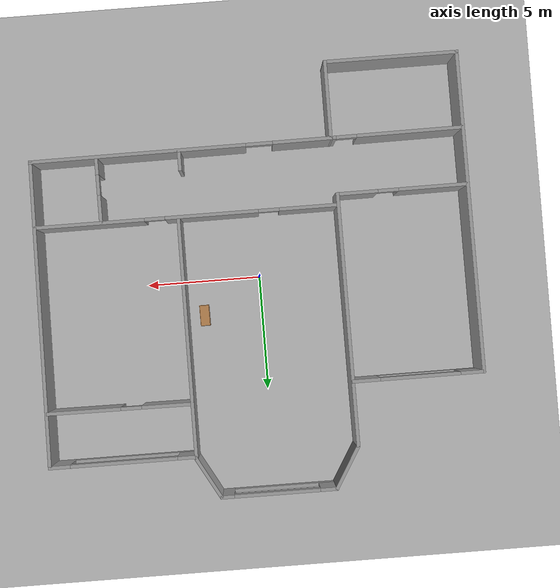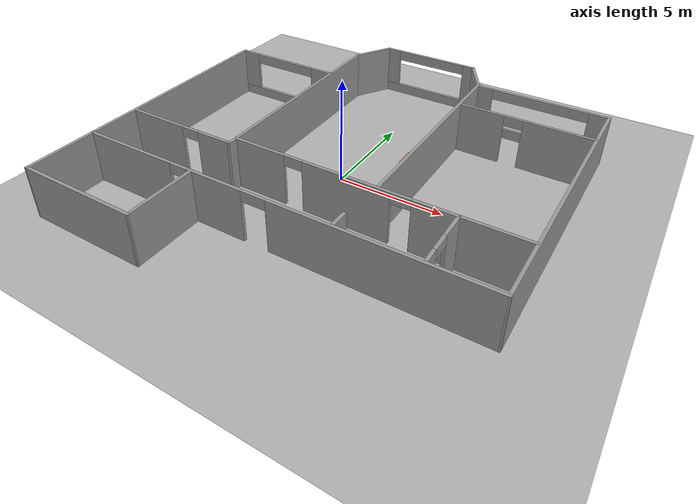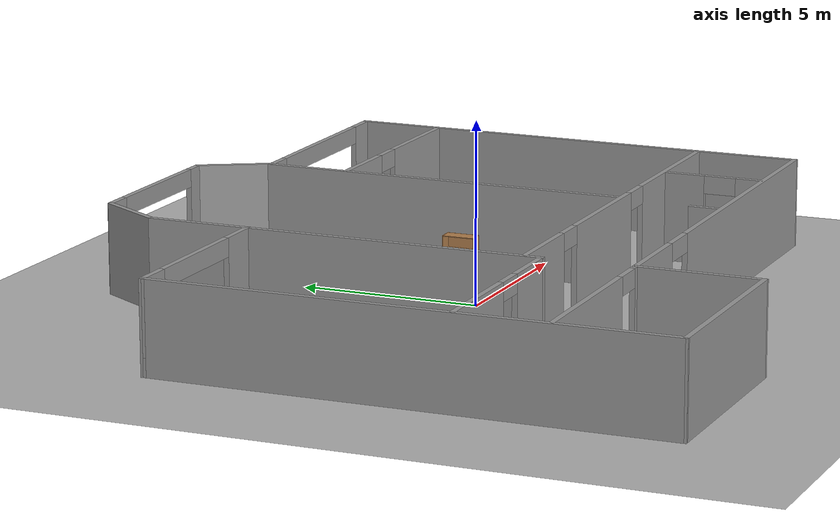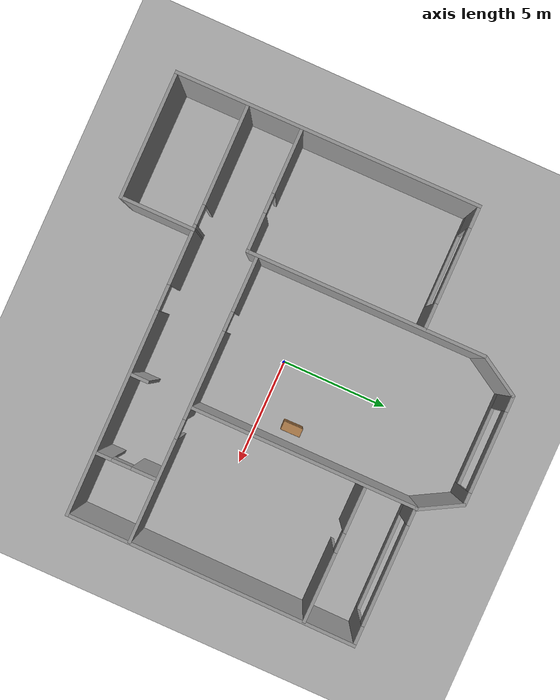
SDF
<sdf version="1.9">
 <world name="default">
  <gravity>0 0 -9.8</gravity>
  <magnetic_field>6e-06 2.3e-05 -4.2e-05</magnetic_field>
  <atmosphere type="adiabatic"/>
  <physics type="ode">
   <max_step_size>0.001</max_step_size>
   <real_time_factor>1</real_time_factor>
   <real_time_update_rate>1000</real_time_update_rate>
  </physics>
  <scene><ambient>0.4 0.4 0.4 1</ambient><background>0.7 0.7 0.7 1</background><shadows>true</shadows></scene>
  <model name="falt_model">
   <pose>0.158541 0.170544 0 0 -0 0</pose>
   <link name="Wall_0">
    <pose>-6.69195 4.70123 0 0 0 -3.14002</pose>
    <visual name="Wall_0_Visual_0">
     <pose>-2.28279 0 1.25 0 -0 0</pose>
     <geometry><box><size>1.24903 0.15 2.5</size></box></geometry>
     <material>
      <script><uri>file://media/materials/scripts/gazebo.material</uri><name>Gazebo/Grey</name></script>
      <ambient>1 1 1 1</ambient>
     </material>
     <meta><layer>0</layer></meta>
    </visual>
    <collision name="Wall_0_Collision_0">
     <geometry><box><size>1.24903 0.15 2.5</size></box></geometry>
     <pose>-2.28279 0 1.25 0 -0 0</pose>
    </collision>
    <visual name="Wall_0_Visual_1">
     <pose>0.624515 0 0.25 0 -0 0</pose>
     <geometry><box><size>4.56558 0.15 0.5</size></box></geometry>
     <material>
      <script><uri>file://media/materials/scripts/gazebo.material</uri><name>Gazebo/Grey</name></script>
      <ambient>1 1 1 1</ambient>
     </material>
     <meta><layer>0</layer></meta>
    </visual>
    <collision name="Wall_0_Collision_1">
     <geometry><box><size>4.56558 0.15 0.5</size></box></geometry>
     <pose>0.624515 0 0.25 0 -0 0</pose>
    </collision>
    <visual name="Wall_0_Visual_2">
     <pose>2.36563 0 1.5 0 -0 0</pose>
     <geometry><box><size>1.08335 0.15 2</size></box></geometry>
     <material>
      <script><uri>file://media/materials/scripts/gazebo.material</uri><name>Gazebo/Grey</name></script>
      <ambient>1 1 1 1</ambient>
     </material>
     <meta><layer>0</layer></meta>
    </visual>
    <collision name="Wall_0_Collision_2">
     <geometry><box><size>1.08335 0.15 2</size></box></geometry>
     <pose>2.36563 0 1.5 0 -0 0</pose>
    </collision>
    <visual name="Wall_0_Visual_3">
     <pose>0.082842 0 2.25 0 -0 0</pose>
     <geometry><box><size>3.48223 0.15 0.5</size></box></geometry>
     <material>
      <script><uri>file://media/materials/scripts/gazebo.material</uri><name>Gazebo/Grey</name></script>
      <ambient>1 1 1 1</ambient>
     </material>
     <meta><layer>0</layer></meta>
    </visual>
    <collision name="Wall_0_Collision_3">
     <geometry><box><size>3.48223 0.15 0.5</size></box></geometry>
     <pose>0.082842 0 2.25 0 -0 0</pose>
    </collision>
    <inertial>
     <mass>1</mass>
     <inertia><ixx>1</ixx><ixy>0</ixy><ixz>0</ixz><iyy>1</iyy><iyz>0</iyz><izz>1</izz></inertia>
    </inertial>
   </link>
   <link name="Wall_1">
    <collision name="Wall_1_Collision">
     <geometry><box><size>14.1027 0.15 2.5</size></box></geometry>
     <pose>0 0 1.25 0 -0 0</pose>
    </collision>
    <visual name="Wall_1_Visual">
     <pose>0 0 1.25 0 -0 0</pose>
     <geometry><box><size>14.1027 0.15 2.5</size></box></geometry>
     <material>
      <script><uri>file://media/materials/scripts/gazebo.material</uri><name>Gazebo/Grey</name></script>
      <ambient>1 1 1 1</ambient>
     </material>
     <meta><layer>0</layer></meta>
    </visual>
    <pose>-9.48979 -2.27951 0 0 0 -1.56586</pose>
    <inertial>
     <mass>1</mass>
     <inertia><ixx>1</ixx><ixy>0</ixy><ixz>0</ixz><iyy>1</iyy><iyz>0</iyz><izz>1</izz></inertia>
    </inertial>
   </link>
   <link name="Wall_11">
    <collision name="Wall_11_Collision">
     <geometry><box><size>11.0601 0.15 2.5</size></box></geometry>
     <pose>0 0 1.25 0 -0 0</pose>
    </collision>
    <visual name="Wall_11_Visual">
     <pose>0 0 1.25 0 -0 0</pose>
     <geometry><box><size>11.0601 0.15 2.5</size></box></geometry>
     <material>
      <script><uri>file://media/materials/scripts/gazebo.material</uri><name>Gazebo/Grey</name></script>
      <ambient>1 1 1 1</ambient>
     </material>
     <meta><layer>0</layer></meta>
    </visual>
    <pose>-3.82616 2.00348 0 0 0 -1.56667</pose>
    <inertial>
     <mass>1</mass>
     <inertia><ixx>1</ixx><ixy>0</ixy><ixz>0</ixz><iyy>1</iyy><iyz>0</iyz><izz>1</izz></inertia>
    </inertial>
   </link>
   <link name="Wall_13">
    <pose>-6.62756 -3.45819 0 0 -0 0.003469</pose>
    <visual name="Wall_13_Visual_0">
     <pose>-1.34562 0 1.25 0 -0 0</pose>
     <geometry><box><size>3.01762 0.15 2.5</size></box></geometry>
     <material>
      <script><uri>file://media/materials/scripts/gazebo.material</uri><name>Gazebo/Grey</name></script>
      <ambient>1 1 1 1</ambient>
     </material>
     <meta><layer>0</layer></meta>
    </visual>
    <collision name="Wall_13_Collision_0">
     <geometry><box><size>3.01762 0.15 2.5</size></box></geometry>
     <pose>-1.34562 0 1.25 0 -0 0</pose>
    </collision>
    <visual name="Wall_13_Visual_1">
     <pose>1.95881 0 1.25 0 -0 0</pose>
     <geometry><box><size>1.79124 0.15 2.5</size></box></geometry>
     <material>
      <script><uri>file://media/materials/scripts/gazebo.material</uri><name>Gazebo/Grey</name></script>
      <ambient>1 1 1 1</ambient>
     </material>
     <meta><layer>0</layer></meta>
    </visual>
    <collision name="Wall_13_Collision_1">
     <geometry><box><size>1.79124 0.15 2.5</size></box></geometry>
     <pose>1.95881 0 1.25 0 -0 0</pose>
    </collision>
    <visual name="Wall_13_Visual_2">
     <pose>0.613187 0 2.25 0 -0 0</pose>
     <geometry><box><size>0.9 0.15 0.5</size></box></geometry>
     <material>
      <script><uri>file://media/materials/scripts/gazebo.material</uri><name>Gazebo/Grey</name></script>
      <ambient>1 1 1 1</ambient>
     </material>
     <meta><layer>0</layer></meta>
    </visual>
    <collision name="Wall_13_Collision_2">
     <geometry><box><size>0.9 0.15 0.5</size></box></geometry>
     <pose>0.613187 0 2.25 0 -0 0</pose>
    </collision>
    <inertial>
     <mass>1</mass>
     <inertia><ixx>1</ixx><ixy>0</ixy><ixz>0</ixz><iyy>1</iyy><iyz>0</iyz><izz>1</izz></inertia>
    </inertial>
   </link>
   <link name="Wall_15">
    <pose>-6.57645 -5.93551 0 0 0 -3.1355</pose>
    <visual name="Wall_15_Visual_0">
     <pose>-2.77612 0 1.25 0 -0 0</pose>
     <geometry><box><size>0.270004 0.15 2.5</size></box></geometry>
     <material>
      <script><uri>file://media/materials/scripts/gazebo.material</uri><name>Gazebo/Grey</name></script>
      <ambient>1 1 1 1</ambient>
     </material>
     <meta><layer>0</layer></meta>
    </visual>
    <collision name="Wall_15_Collision_0">
     <geometry><box><size>0.270004 0.15 2.5</size></box></geometry>
     <pose>-2.77612 0 1.25 0 -0 0</pose>
    </collision>
    <visual name="Wall_15_Visual_1">
     <pose>0.585002 0 1.25 0 -0 0</pose>
     <geometry><box><size>4.65224 0.15 2.5</size></box></geometry>
     <material>
      <script><uri>file://media/materials/scripts/gazebo.material</uri><name>Gazebo/Grey</name></script>
      <ambient>1 1 1 1</ambient>
     </material>
     <meta><layer>0</layer></meta>
    </visual>
    <collision name="Wall_15_Collision_1">
     <geometry><box><size>4.65224 0.15 2.5</size></box></geometry>
     <pose>0.585002 0 1.25 0 -0 0</pose>
    </collision>
    <visual name="Wall_15_Visual_2">
     <pose>-2.19112 0 2.25 0 -0 0</pose>
     <geometry><box><size>0.9 0.15 0.5</size></box></geometry>
     <material>
      <script><uri>file://media/materials/scripts/gazebo.material</uri><name>Gazebo/Grey</name></script>
      <ambient>1 1 1 1</ambient>
     </material>
     <meta><layer>0</layer></meta>
    </visual>
    <collision name="Wall_15_Collision_2">
     <geometry><box><size>0.9 0.15 0.5</size></box></geometry>
     <pose>-2.19112 0 2.25 0 -0 0</pose>
    </collision>
    <inertial>
     <mass>1</mass>
     <inertia><ixx>1</ixx><ixy>0</ixy><ixz>0</ixz><iyy>1</iyy><iyz>0</iyz><izz>1</izz></inertia>
    </inertial>
   </link>
   <link name="Wall_17">
    <pose>2.82289 -2.98794 0 0 -0 0.000658</pose>
    <visual name="Wall_17_Visual_0">
     <pose>-5.3418 0 1.25 0 -0 0</pose>
     <geometry><box><size>2.60051 0.15 2.5</size></box></geometry>
     <material>
      <script><uri>file://media/materials/scripts/gazebo.material</uri><name>Gazebo/Grey</name></script>
      <ambient>1 1 1 1</ambient>
     </material>
     <meta><layer>0</layer></meta>
    </visual>
    <collision name="Wall_17_Collision_0">
     <geometry><box><size>2.60051 0.15 2.5</size></box></geometry>
     <pose>-5.3418 0 1.25 0 -0 0</pose>
    </collision>
    <visual name="Wall_17_Visual_1">
     <pose>-1.10383 0 1.25 0 -0 0</pose>
     <geometry><box><size>4.07544 0.15 2.5</size></box></geometry>
     <material>
      <script><uri>file://media/materials/scripts/gazebo.material</uri><name>Gazebo/Grey</name></script>
      <ambient>1 1 1 1</ambient>
     </material>
     <meta><layer>0</layer></meta>
    </visual>
    <collision name="Wall_17_Collision_1">
     <geometry><box><size>4.07544 0.15 2.5</size></box></geometry>
     <pose>-1.10383 0 1.25 0 -0 0</pose>
    </collision>
    <visual name="Wall_17_Visual_2">
     <pose>4.23797 0 1.25 0 -0 0</pose>
     <geometry><box><size>4.80816 0.15 2.5</size></box></geometry>
     <material>
      <script><uri>file://media/materials/scripts/gazebo.material</uri><name>Gazebo/Grey</name></script>
      <ambient>1 1 1 1</ambient>
     </material>
     <meta><layer>0</layer></meta>
    </visual>
    <collision name="Wall_17_Collision_2">
     <geometry><box><size>4.80816 0.15 2.5</size></box></geometry>
     <pose>4.23797 0 1.25 0 -0 0</pose>
    </collision>
    <visual name="Wall_17_Visual_3">
     <pose>-3.59155 0 2.25 0 -0 0</pose>
     <geometry><box><size>0.9 0.15 0.5</size></box></geometry>
     <material>
      <script><uri>file://media/materials/scripts/gazebo.material</uri><name>Gazebo/Grey</name></script>
      <ambient>1 1 1 1</ambient>
     </material>
     <meta><layer>0</layer></meta>
    </visual>
    <collision name="Wall_17_Collision_3">
     <geometry><box><size>0.9 0.15 0.5</size></box></geometry>
     <pose>-3.59155 0 2.25 0 -0 0</pose>
    </collision>
    <visual name="Wall_17_Visual_4">
     <pose>1.38389 0 2.25 0 -0 0</pose>
     <geometry><box><size>0.9 0.15 0.5</size></box></geometry>
     <material>
      <script><uri>file://media/materials/scripts/gazebo.material</uri><name>Gazebo/Grey</name></script>
      <ambient>1 1 1 1</ambient>
     </material>
     <meta><layer>0</layer></meta>
    </visual>
    <collision name="Wall_17_Collision_4">
     <geometry><box><size>0.9 0.15 0.5</size></box></geometry>
     <pose>1.38389 0 2.25 0 -0 0</pose>
    </collision>
    <inertial>
     <mass>1</mass>
     <inertia><ixx>1</ixx><ixy>0</ixy><ixz>0</ixz><iyy>1</iyy><iyz>0</iyz><izz>1</izz></inertia>
    </inertial>
   </link>
   <link name="Wall_19">
    <pose>6.54523 -4.40598 0 0 0 -1.5646</pose>
    <visual name="Wall_19_Visual_0">
     <pose>-0.842287 0 1.25 0 -0 0</pose>
     <geometry><box><size>1.25832 0.15 2.5</size></box></geometry>
     <material>
      <script><uri>file://media/materials/scripts/gazebo.material</uri><name>Gazebo/Grey</name></script>
      <ambient>1 1 1 1</ambient>
     </material>
     <meta><layer>0</layer></meta>
    </visual>
    <collision name="Wall_19_Collision_0">
     <geometry><box><size>1.25832 0.15 2.5</size></box></geometry>
     <pose>-0.842287 0 1.25 0 -0 0</pose>
    </collision>
    <visual name="Wall_19_Visual_1">
     <pose>1.07916 0 1.25 0 -0 0</pose>
     <geometry><box><size>0.784573 0.15 2.5</size></box></geometry>
     <material>
      <script><uri>file://media/materials/scripts/gazebo.material</uri><name>Gazebo/Grey</name></script>
      <ambient>1 1 1 1</ambient>
     </material>
     <meta><layer>0</layer></meta>
    </visual>
    <collision name="Wall_19_Collision_1">
     <geometry><box><size>0.784573 0.15 2.5</size></box></geometry>
     <pose>1.07916 0 1.25 0 -0 0</pose>
    </collision>
    <visual name="Wall_19_Visual_2">
     <pose>0.236871 0 2.25 0 -0 0</pose>
     <geometry><box><size>0.9 0.15 0.5</size></box></geometry>
     <material>
      <script><uri>file://media/materials/scripts/gazebo.material</uri><name>Gazebo/Grey</name></script>
      <ambient>1 1 1 1</ambient>
     </material>
     <meta><layer>0</layer></meta>
    </visual>
    <collision name="Wall_19_Collision_2">
     <geometry><box><size>0.9 0.15 0.5</size></box></geometry>
     <pose>0.236871 0 2.25 0 -0 0</pose>
    </collision>
    <inertial>
     <mass>1</mass>
     <inertia><ixx>1</ixx><ixy>0</ixy><ixz>0</ixz><iyy>1</iyy><iyz>0</iyz><izz>1</izz></inertia>
    </inertial>
   </link>
   <link name="Wall_2">
    <collision name="Wall_2_Collision">
     <geometry><box><size>5.90106 0.15 2.5</size></box></geometry>
     <pose>0 0 1.25 0 -0 0</pose>
    </collision>
    <visual name="Wall_2_Visual">
     <pose>0 0 1.25 0 -0 0</pose>
     <geometry><box><size>5.90106 0.15 2.5</size></box></geometry>
     <material>
      <script><uri>file://media/materials/scripts/gazebo.material</uri><name>Gazebo/Grey</name></script>
      <ambient>1 1 1 1</ambient>
     </material>
     <meta><layer>0</layer></meta>
    </visual>
    <pose>-6.5798 -9.25394 0 0 -0 0.000644</pose>
    <inertial>
     <mass>1</mass>
     <inertia><ixx>1</ixx><ixy>0</ixy><ixz>0</ixz><iyy>1</iyy><iyz>0</iyz><izz>1</izz></inertia>
    </inertial>
   </link>
   <link name="Wall_21">
    <collision name="Wall_21_Collision">
     <geometry><box><size>0.87631 0.15 2.5</size></box></geometry>
     <pose>0 0 1.25 0 -0 0</pose>
    </collision>
    <visual name="Wall_21_Visual">
     <pose>0 0 1.25 0 -0 0</pose>
     <geometry><box><size>0.87631 0.15 2.5</size></box></geometry>
     <material>
      <script><uri>file://media/materials/scripts/gazebo.material</uri><name>Gazebo/Grey</name></script>
      <ambient>1 1 1 1</ambient>
     </material>
     <meta><layer>0</layer></meta>
    </visual>
    <pose>2.93962 -5.4306 0 0 0 -1.5708</pose>
    <inertial>
     <mass>1</mass>
     <inertia><ixx>1</ixx><ixy>0</ixy><ixz>0</ixz><iyy>1</iyy><iyz>0</iyz><izz>1</izz></inertia>
    </inertial>
   </link>
   <link name="Wall_23">
    <collision name="Wall_23_Collision">
     <geometry><box><size>10.4557 0.15 2.5</size></box></geometry>
     <pose>0 0 1.25 0 -0 0</pose>
    </collision>
    <visual name="Wall_23_Visual">
     <pose>0 0 1.25 0 -0 0</pose>
     <geometry><box><size>10.4557 0.15 2.5</size></box></geometry>
     <material>
      <script><uri>file://media/materials/scripts/gazebo.material</uri><name>Gazebo/Grey</name></script>
      <ambient>1 1 1 1</ambient>
     </material>
     <meta><layer>0</layer></meta>
    </visual>
    <pose>3.17389 2.30902 0 0 0 -1.57071</pose>
    <inertial>
     <mass>1</mass>
     <inertia><ixx>1</ixx><ixy>0</ixy><ixz>0</ixz><iyy>1</iyy><iyz>0</iyz><izz>1</izz></inertia>
    </inertial>
   </link>
   <link name="Wall_25">
    <pose>6.3156 5.11522 0 0 0 -0.006369</pose>
    <visual name="Wall_25_Visual_0">
     <pose>-2.06943 0 1.25 0 -0 0</pose>
     <geometry><box><size>2.25581 0.15 2.5</size></box></geometry>
     <material>
      <script><uri>file://media/materials/scripts/gazebo.material</uri><name>Gazebo/Grey</name></script>
      <ambient>1 1 1 1</ambient>
     </material>
     <meta><layer>0</layer></meta>
    </visual>
    <collision name="Wall_25_Collision_0">
     <geometry><box><size>2.25581 0.15 2.5</size></box></geometry>
     <pose>-2.06943 0 1.25 0 -0 0</pose>
    </collision>
    <visual name="Wall_25_Visual_1">
     <pose>1.5779 0 1.25 0 -0 0</pose>
     <geometry><box><size>3.23886 0.15 2.5</size></box></geometry>
     <material>
      <script><uri>file://media/materials/scripts/gazebo.material</uri><name>Gazebo/Grey</name></script>
      <ambient>1 1 1 1</ambient>
     </material>
     <meta><layer>0</layer></meta>
    </visual>
    <collision name="Wall_25_Collision_1">
     <geometry><box><size>3.23886 0.15 2.5</size></box></geometry>
     <pose>1.5779 0 1.25 0 -0 0</pose>
    </collision>
    <visual name="Wall_25_Visual_2">
     <pose>-0.491526 0 2.25 0 -0 0</pose>
     <geometry><box><size>0.9 0.15 0.5</size></box></geometry>
     <material>
      <script><uri>file://media/materials/scripts/gazebo.material</uri><name>Gazebo/Grey</name></script>
      <ambient>1 1 1 1</ambient>
     </material>
     <meta><layer>0</layer></meta>
    </visual>
    <collision name="Wall_25_Collision_2">
     <geometry><box><size>0.9 0.15 0.5</size></box></geometry>
     <pose>-0.491526 0 2.25 0 -0 0</pose>
    </collision>
    <inertial>
     <mass>1</mass>
     <inertia><ixx>1</ixx><ixy>0</ixy><ixz>0</ixz><iyy>1</iyy><iyz>0</iyz><izz>1</izz></inertia>
    </inertial>
   </link>
   <link name="Wall_27">
    <collision name="Wall_27_Collision">
     <geometry><box><size>2.09791 0.15 2.5</size></box></geometry>
     <pose>0 0 1.25 0 -0 0</pose>
    </collision>
    <visual name="Wall_27_Visual">
     <pose>0 0 1.25 0 -0 0</pose>
     <geometry><box><size>2.09791 0.15 2.5</size></box></geometry>
     <material>
      <script><uri>file://media/materials/scripts/gazebo.material</uri><name>Gazebo/Grey</name></script>
      <ambient>1 1 1 1</ambient>
     </material>
     <meta><layer>0</layer></meta>
    </visual>
    <pose>-3.31749 8.39249 0 0 -0 1.03011</pose>
    <inertial>
     <mass>1</mass>
     <inertia><ixx>1</ixx><ixy>0</ixy><ixz>0</ixz><iyy>1</iyy><iyz>0</iyz><izz>1</izz></inertia>
    </inertial>
   </link>
   <link name="Wall_29">
    <collision name="Wall_29_Collision">
     <geometry><box><size>2.15321 0.15 2.5</size></box></geometry>
     <pose>0 0 1.25 0 -0 0</pose>
    </collision>
    <visual name="Wall_29_Visual">
     <pose>0 0 1.25 0 -0 0</pose>
     <geometry><box><size>2.15321 0.15 2.5</size></box></geometry>
     <material>
      <script><uri>file://media/materials/scripts/gazebo.material</uri><name>Gazebo/Grey</name></script>
      <ambient>1 1 1 1</ambient>
     </material>
     <meta><layer>0</layer></meta>
    </visual>
    <pose>2.71338 8.35305 0 0 0 -1.05987</pose>
    <inertial>
     <mass>1</mass>
     <inertia><ixx>1</ixx><ixy>0</ixy><ixz>0</ixz><iyy>1</iyy><iyz>0</iyz><izz>1</izz></inertia>
    </inertial>
   </link>
   <link name="Wall_3">
    <collision name="Wall_3_Collision">
     <geometry><box><size>3.48434 0.15 2.5</size></box></geometry>
     <pose>0 0 1.25 0 -0 0</pose>
    </collision>
    <visual name="Wall_3_Visual">
     <pose>0 0 1.25 0 -0 0</pose>
     <geometry><box><size>3.48434 0.15 2.5</size></box></geometry>
     <material>
      <script><uri>file://media/materials/scripts/gazebo.material</uri><name>Gazebo/Grey</name></script>
      <ambient>1 1 1 1</ambient>
     </material>
     <meta><layer>0</layer></meta>
    </visual>
    <pose>-3.70427 -7.58493 0 0 -0 1.5708</pose>
    <inertial>
     <mass>1</mass>
     <inertia><ixx>1</ixx><ixy>0</ixy><ixz>0</ixz><iyy>1</iyy><iyz>0</iyz><izz>1</izz></inertia>
    </inertial>
   </link>
   <link name="Wall_4">
    <pose>2.85733 -5.88717 0 0 -0 0.004662</pose>
    <visual name="Wall_4_Visual_0">
     <pose>-5.32571 0 1.25 0 -0 0</pose>
     <geometry><box><size>2.62193 0.15 2.5</size></box></geometry>
     <material>
      <script><uri>file://media/materials/scripts/gazebo.material</uri><name>Gazebo/Grey</name></script>
      <ambient>1 1 1 1</ambient>
     </material>
     <meta><layer>0</layer></meta>
    </visual>
    <collision name="Wall_4_Collision_0">
     <geometry><box><size>2.62193 0.15 2.5</size></box></geometry>
     <pose>-5.32571 0 1.25 0 -0 0</pose>
    </collision>
    <visual name="Wall_4_Visual_1">
     <pose>1.89571 0 1.25 0 -0 0</pose>
     <geometry><box><size>9.48194 0.15 2.5</size></box></geometry>
     <material>
      <script><uri>file://media/materials/scripts/gazebo.material</uri><name>Gazebo/Grey</name></script>
      <ambient>1 1 1 1</ambient>
     </material>
     <meta><layer>0</layer></meta>
    </visual>
    <collision name="Wall_4_Collision_1">
     <geometry><box><size>9.48194 0.15 2.5</size></box></geometry>
     <pose>1.89571 0 1.25 0 -0 0</pose>
    </collision>
    <visual name="Wall_4_Visual_2">
     <pose>-3.43 0 2.25 0 -0 0</pose>
     <geometry><box><size>1.16949 0.15 0.5</size></box></geometry>
     <material>
      <script><uri>file://media/materials/scripts/gazebo.material</uri><name>Gazebo/Grey</name></script>
      <ambient>1 1 1 1</ambient>
     </material>
     <meta><layer>0</layer></meta>
    </visual>
    <collision name="Wall_4_Collision_2">
     <geometry><box><size>1.16949 0.15 0.5</size></box></geometry>
     <pose>-3.43 0 2.25 0 -0 0</pose>
    </collision>
    <inertial>
     <mass>1</mass>
     <inertia><ixx>1</ixx><ixy>0</ixy><ixz>0</ixz><iyy>1</iyy><iyz>0</iyz><izz>1</izz></inertia>
    </inertial>
   </link>
   <link name="Wall_5">
    <collision name="Wall_5_Collision">
     <geometry><box><size>13.4349 0.15 2.5</size></box></geometry>
     <pose>0 0 1.25 0 -0 0</pose>
    </collision>
    <visual name="Wall_5_Visual">
     <pose>0 0 1.25 0 -0 0</pose>
     <geometry><box><size>13.4349 0.15 2.5</size></box></geometry>
     <material>
      <script><uri>file://media/materials/scripts/gazebo.material</uri><name>Gazebo/Grey</name></script>
      <ambient>1 1 1 1</ambient>
     </material>
     <meta><layer>0</layer></meta>
    </visual>
    <pose>9.47148 0.785643 0 0 -0 1.56289</pose>
    <inertial>
     <mass>1</mass>
     <inertia><ixx>1</ixx><ixy>0</ixy><ixz>0</ixz><iyy>1</iyy><iyz>0</iyz><izz>1</izz></inertia>
    </inertial>
   </link>
   <link name="Wall_6">
    <pose>6.40685 7.4277 0 0 0 -3.14154</pose>
    <visual name="Wall_6_Visual_0">
     <pose>-2.70911 0 1.25 0 -0 0</pose>
     <geometry><box><size>0.96614 0.15 2.5</size></box></geometry>
     <material>
      <script><uri>file://media/materials/scripts/gazebo.material</uri><name>Gazebo/Grey</name></script>
      <ambient>1 1 1 1</ambient>
     </material>
     <meta><layer>0</layer></meta>
    </visual>
    <collision name="Wall_6_Collision_0">
     <geometry><box><size>0.96614 0.15 2.5</size></box></geometry>
     <pose>-2.70911 0 1.25 0 -0 0</pose>
    </collision>
    <visual name="Wall_6_Visual_1">
     <pose>0.48307 0 0.25 0 -0 0</pose>
     <geometry><box><size>5.41822 0.15 0.5</size></box></geometry>
     <material>
      <script><uri>file://media/materials/scripts/gazebo.material</uri><name>Gazebo/Grey</name></script>
      <ambient>1 1 1 1</ambient>
     </material>
     <meta><layer>0</layer></meta>
    </visual>
    <collision name="Wall_6_Collision_1">
     <geometry><box><size>5.41822 0.15 0.5</size></box></geometry>
     <pose>0.48307 0 0.25 0 -0 0</pose>
    </collision>
    <visual name="Wall_6_Visual_2">
     <pose>2.81013 0 1.5 0 -0 0</pose>
     <geometry><box><size>0.764108 0.15 2</size></box></geometry>
     <material>
      <script><uri>file://media/materials/scripts/gazebo.material</uri><name>Gazebo/Grey</name></script>
      <ambient>1 1 1 1</ambient>
     </material>
     <meta><layer>0</layer></meta>
    </visual>
    <collision name="Wall_6_Collision_2">
     <geometry><box><size>0.764108 0.15 2</size></box></geometry>
     <pose>2.81013 0 1.5 0 -0 0</pose>
    </collision>
    <visual name="Wall_6_Visual_3">
     <pose>0.101016 0 2.25 0 -0 0</pose>
     <geometry><box><size>4.65411 0.15 0.5</size></box></geometry>
     <material>
      <script><uri>file://media/materials/scripts/gazebo.material</uri><name>Gazebo/Grey</name></script>
      <ambient>1 1 1 1</ambient>
     </material>
     <meta><layer>0</layer></meta>
    </visual>
    <collision name="Wall_6_Collision_3">
     <geometry><box><size>4.65411 0.15 0.5</size></box></geometry>
     <pose>0.101016 0 2.25 0 -0 0</pose>
    </collision>
    <inertial>
     <mass>1</mass>
     <inertia><ixx>1</ixx><ixy>0</ixy><ixz>0</ixz><iyy>1</iyy><iyz>0</iyz><izz>1</izz></inertia>
    </inertial>
   </link>
   <link name="Wall_9">
    <pose>-0.296192 9.25453 0 0 -0 3.14095</pose>
    <visual name="Wall_9_Visual_0">
     <pose>-2.24984 0 1.25 0 -0 0</pose>
     <geometry><box><size>0.602381 0.15 2.5</size></box></geometry>
     <material>
      <script><uri>file://media/materials/scripts/gazebo.material</uri><name>Gazebo/Grey</name></script>
      <ambient>1 1 1 1</ambient>
     </material>
     <meta><layer>0</layer></meta>
    </visual>
    <collision name="Wall_9_Collision_0">
     <geometry><box><size>0.602381 0.15 2.5</size></box></geometry>
     <pose>-2.24984 0 1.25 0 -0 0</pose>
    </collision>
    <visual name="Wall_9_Visual_1">
     <pose>0.30119 0 0.25 0 -0 0</pose>
     <geometry><box><size>4.49969 0.15 0.5</size></box></geometry>
     <material>
      <script><uri>file://media/materials/scripts/gazebo.material</uri><name>Gazebo/Grey</name></script>
      <ambient>1 1 1 1</ambient>
     </material>
     <meta><layer>0</layer></meta>
    </visual>
    <collision name="Wall_9_Collision_1">
     <geometry><box><size>4.49969 0.15 0.5</size></box></geometry>
     <pose>0.30119 0 0.25 0 -0 0</pose>
    </collision>
    <visual name="Wall_9_Visual_2">
     <pose>2.16487 0 1.5 0 -0 0</pose>
     <geometry><box><size>0.772335 0.15 2</size></box></geometry>
     <material>
      <script><uri>file://media/materials/scripts/gazebo.material</uri><name>Gazebo/Grey</name></script>
      <ambient>1 1 1 1</ambient>
     </material>
     <meta><layer>0</layer></meta>
    </visual>
    <collision name="Wall_9_Collision_2">
     <geometry><box><size>0.772335 0.15 2</size></box></geometry>
     <pose>2.16487 0 1.5 0 -0 0</pose>
    </collision>
    <visual name="Wall_9_Visual_3">
     <pose>-0.084977 0 2.25 0 -0 0</pose>
     <geometry><box><size>3.72735 0.15 0.5</size></box></geometry>
     <material>
      <script><uri>file://media/materials/scripts/gazebo.material</uri><name>Gazebo/Grey</name></script>
      <ambient>1 1 1 1</ambient>
     </material>
     <meta><layer>0</layer></meta>
    </visual>
    <collision name="Wall_9_Collision_3">
     <geometry><box><size>3.72735 0.15 0.5</size></box></geometry>
     <pose>-0.084977 0 2.25 0 -0 0</pose>
    </collision>
    <inertial>
     <mass>1</mass>
     <inertia><ixx>1</ixx><ixy>0</ixy><ixz>0</ixz><iyy>1</iyy><iyz>0</iyz><izz>1</izz></inertia>
    </inertial>
   </link>
   <static>true</static>
  </model>
  <model name="ground_plane">
   <static>true</static>
   <link name="link">
    <collision name="collision">
     <geometry><plane><normal>0 0 1</normal><size>100 100</size></plane></geometry>
     <surface><friction><ode><mu>100</mu><mu2>50</mu2></ode></friction></surface>
    </collision>
    <visual name="visual">
     <cast_shadows>false</cast_shadows>
     <geometry><plane><normal>0 0 1</normal><size>100 100</size></plane></geometry>
     <material>
      <ambient>0.3 0.3 0.3 1</ambient>
      <diffuse>0.7 0.7 0.7 1</diffuse>
      <specular>0.01 0.01 0.01 1</specular>
     </material>
    </visual>
    <inertial>
     <mass>1</mass>
     <inertia><ixx>1</ixx><ixy>0</ixy><ixz>0</ixz><iyy>1</iyy><iyz>0</iyz><izz>1</izz></inertia>
    </inertial>
   </link>
   <pose>2.34728 -8.28197 0 0 -0 0</pose>
  </model>
  <model name="Bookshelf">
   <static>true</static>
   <link name="link">
    <inertial>
     <mass>1</mass>
     <inertia><ixx>1</ixx><ixy>0</ixy><ixz>0</ixz><iyy>1</iyy><iyz>0</iyz><izz>1</izz></inertia>
    </inertial>
    <collision name="back">
     <pose>0 0.005 0.6 0 0 0</pose>
     <geometry><box><size>0.9 0.01 1.2</size></box></geometry>
    </collision>
    <visual name="visual1">
     <pose>0 0.005 0.6 0 0 0</pose>
     <geometry><box><size>0.9 0.01 1.2</size></box></geometry>
     <material>
      <diffuse>1 1 1 1</diffuse>
      <script><uri>file://media/materials/scripts/gazebo.material</uri><name>Gazebo/Wood</name></script>
      <pbr>
       <metal>
        <albedo_map>https://fuel.gazebosim.org/1.0/openrobotics/models/bookshelf/4/files/bookshelf_diffuse.jpg</albedo_map>
       </metal>
      </pbr>
     </material>
    </visual>
    <collision name="left_side">
     <pose>0.45 -0.195 0.6 0 0 0</pose>
     <geometry><box><size>0.02 0.4 1.2</size></box></geometry>
    </collision>
    <visual name="visual2">
     <pose>0.45 -0.195 0.6 0 0 0</pose>
     <geometry><box><size>0.02 0.4 1.2</size></box></geometry>
     <material>
      <diffuse>1 1 1 1</diffuse>
      <script><uri>file://media/materials/scripts/gazebo.material</uri><name>Gazebo/Wood</name></script>
      <pbr>
       <metal>
        <albedo_map>https://fuel.gazebosim.org/1.0/openrobotics/models/bookshelf/4/files/bookshelf_diffuse.jpg</albedo_map>
       </metal>
      </pbr>
     </material>
    </visual>
    <collision name="right_side">
     <pose>-0.45 -0.195 0.6 0 0 0</pose>
     <geometry><box><size>0.02 0.4 1.2</size></box></geometry>
    </collision>
    <visual name="visual3">
     <pose>-0.45 -0.195 0.6 0 0 0</pose>
     <geometry><box><size>0.02 0.4 1.2</size></box></geometry>
     <material>
      <diffuse>1 1 1 1</diffuse>
      <script><uri>file://media/materials/scripts/gazebo.material</uri><name>Gazebo/Wood</name></script>
      <pbr>
       <metal>
        <albedo_map>https://fuel.gazebosim.org/1.0/openrobotics/models/bookshelf/4/files/bookshelf_diffuse.jpg</albedo_map>
       </metal>
      </pbr>
     </material>
    </visual>
    <collision name="bottom">
     <pose>0 -0.195 0.03 0 0 0</pose>
     <geometry><box><size>0.88 0.4 0.06</size></box></geometry>
    </collision>
    <visual name="visual4">
     <pose>0 -0.195 0.03 0 0 0</pose>
     <geometry><box><size>0.88 0.4 0.06</size></box></geometry>
     <material>
      <diffuse>1 1 1 1</diffuse>
      <script><uri>file://media/materials/scripts/gazebo.material</uri><name>Gazebo/Wood</name></script>
      <pbr>
       <metal>
        <albedo_map>https://fuel.gazebosim.org/1.0/openrobotics/models/bookshelf/4/files/bookshelf_diffuse.jpg</albedo_map>
       </metal>
      </pbr>
     </material>
    </visual>
    <collision name="top">
     <pose>0 -0.195 1.19 0 0 0</pose>
     <geometry><box><size>0.88 0.4 0.02</size></box></geometry>
    </collision>
    <visual name="visual5">
     <pose>0 -0.195 1.19 0 0 0</pose>
     <geometry><box><size>0.88 0.4 0.02</size></box></geometry>
     <material>
      <diffuse>1 1 1 1</diffuse>
      <script><uri>file://media/materials/scripts/gazebo.material</uri><name>Gazebo/Wood</name></script>
      <pbr>
       <metal>
        <albedo_map>https://fuel.gazebosim.org/1.0/openrobotics/models/bookshelf/4/files/bookshelf_diffuse.jpg</albedo_map>
       </metal>
      </pbr>
     </material>
    </visual>
    <collision name="low_shelf">
     <pose>0 -0.195 0.43 0 0 0</pose>
     <geometry><box><size>0.88 0.4 0.02</size></box></geometry>
    </collision>
    <visual name="visual6">
     <pose>0 -0.195 0.43 0 0 0</pose>
     <geometry><box><size>0.88 0.4 0.02</size></box></geometry>
     <material>
      <diffuse>1 1 1 1</diffuse>
      <script><uri>file://media/materials/scripts/gazebo.material</uri><name>Gazebo/Wood</name></script>
      <pbr>
       <metal>
        <albedo_map>https://fuel.gazebosim.org/1.0/openrobotics/models/bookshelf/4/files/bookshelf_diffuse.jpg</albedo_map>
       </metal>
      </pbr>
     </material>
    </visual>
    <collision name="high_shelf">
     <pose>0 -0.195 0.8 0 0 0</pose>
     <geometry><box><size>0.88 0.4 0.02</size></box></geometry>
    </collision>
    <visual name="visual7">
     <pose>0 -0.195 0.8 0 0 0</pose>
     <geometry><box><size>0.88 0.4 0.02</size></box></geometry>
     <material>
      <diffuse>1 1 1 1</diffuse>
      <script><uri>file://media/materials/scripts/gazebo.material</uri><name>Gazebo/Wood</name></script>
      <pbr>
       <metal>
        <albedo_map>https://fuel.gazebosim.org/1.0/openrobotics/models/bookshelf/4/files/bookshelf_diffuse.jpg</albedo_map>
       </metal>
      </pbr>
     </material>
    </visual>
   </link>
   <pose>2.74861 1.52842 0 0 0 -1.56089</pose>
  </model>
  <light name="sun" type="directional">
   <pose>-13.028 -5.12295 10 0 -0 0</pose>
   <intensity>1</intensity>
   <direction>-0.5 0.1 -0.9</direction>
   <diffuse>0.8 0.8 0.8 1</diffuse>
   <specular>0.2 0.2 0.2 1</specular>
   <attenuation>
    <range>1000</range>
    <linear>0.01</linear>
    <constant>0.90000000000000002</constant>
    <quadratic>0.001</quadratic>
   </attenuation>
   <spot><inner_angle>0</inner_angle><outer_angle>0</outer_angle><falloff>0</falloff></spot>
  </light>
 </world>
</sdf>
